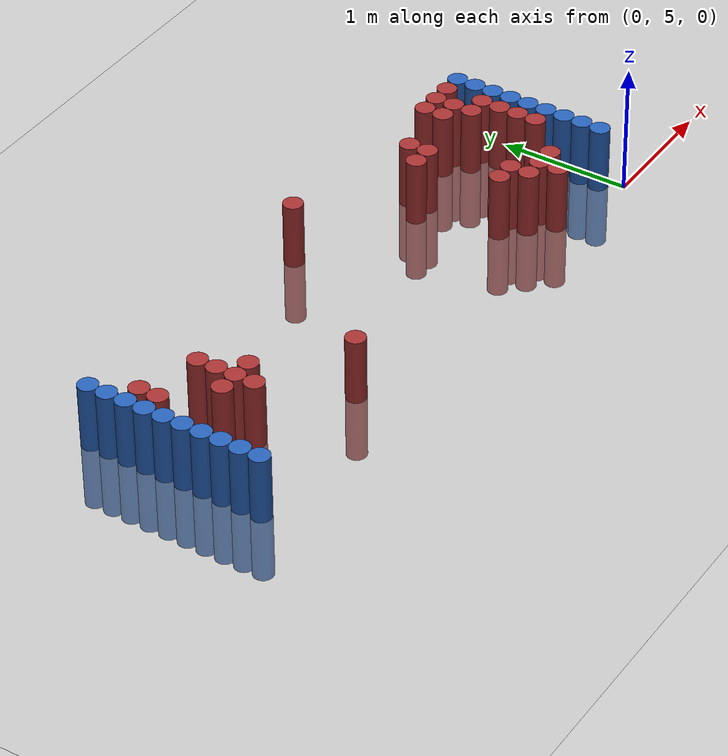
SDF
<sdf version="1.6">
 <world name="default">
  <model name="ground_plane">
   <static>1</static>
   <link name="link">
    <collision name="collision">
     <geometry><plane><normal>0 0 1</normal><size>100 100</size></plane></geometry>
     <surface><friction><ode><mu>100</mu><mu2>50</mu2></ode></friction></surface>
    </collision>
    <visual name="visual">
     <cast_shadows>0</cast_shadows>
     <geometry><plane><normal>0 0 1</normal><size>100 100</size></plane></geometry>
     <material>
      <script><uri>file://media/materials/scripts/gazebo.material</uri><name>Gazebo/Grey</name></script>
     </material>
    </visual>
   </link>
  </model>
  <model name="unit_cylinder_96">
   <static>1</static>
   <pose>-4.425000 5.175000 0.000000 0.000000 0.000000 0.000000</pose>
   <link name="link">
    <inertial>
     <mass>1</mass>
     <inertia><ixx>0.145833</ixx><ixy>0</ixy><ixz>0</ixz><iyy>0.145833</iyy><iyz>0</iyz><izz>0.125</izz></inertia>
    </inertial>
    <collision name="collision">
     <geometry><cylinder><radius>0.075000</radius><length>1</length></cylinder></geometry>
    </collision>
    <visual name="visual">
     <geometry><cylinder><radius>0.075000</radius><length>1</length></cylinder></geometry>
     <material>
      <ambient>0.152000 0.379000 0.720000 1</ambient>
      <diffuse>0.152000 0.379000 0.720000 1</diffuse>
     </material>
     <material>
      <script><name>Gazebo/Grey</name><uri>file://media/materials/scripts/gazebo.material</uri></script>
     </material>
    </visual>
   </link>
  </model>
  <model name="unit_cylinder_97">
   <static>1</static>
   <pose>-4.425000 5.325000 0.000000 0.000000 0.000000 0.000000</pose>
   <link name="link">
    <inertial>
     <mass>1</mass>
     <inertia><ixx>0.145833</ixx><ixy>0</ixy><ixz>0</ixz><iyy>0.145833</iyy><iyz>0</iyz><izz>0.125</izz></inertia>
    </inertial>
    <collision name="collision">
     <geometry><cylinder><radius>0.075000</radius><length>1</length></cylinder></geometry>
    </collision>
    <visual name="visual">
     <geometry><cylinder><radius>0.075000</radius><length>1</length></cylinder></geometry>
     <material>
      <ambient>0.152000 0.379000 0.720000 1</ambient>
      <diffuse>0.152000 0.379000 0.720000 1</diffuse>
     </material>
     <material>
      <script><name>Gazebo/Grey</name><uri>file://media/materials/scripts/gazebo.material</uri></script>
     </material>
    </visual>
   </link>
  </model>
  <model name="unit_cylinder_98">
   <static>1</static>
   <pose>-4.425000 5.475000 0.000000 0.000000 0.000000 0.000000</pose>
   <link name="link">
    <inertial>
     <mass>1</mass>
     <inertia><ixx>0.145833</ixx><ixy>0</ixy><ixz>0</ixz><iyy>0.145833</iyy><iyz>0</iyz><izz>0.125</izz></inertia>
    </inertial>
    <collision name="collision">
     <geometry><cylinder><radius>0.075000</radius><length>1</length></cylinder></geometry>
    </collision>
    <visual name="visual">
     <geometry><cylinder><radius>0.075000</radius><length>1</length></cylinder></geometry>
     <material>
      <ambient>0.152000 0.379000 0.720000 1</ambient>
      <diffuse>0.152000 0.379000 0.720000 1</diffuse>
     </material>
     <material>
      <script><name>Gazebo/Grey</name><uri>file://media/materials/scripts/gazebo.material</uri></script>
     </material>
    </visual>
   </link>
  </model>
  <model name="unit_cylinder_99">
   <static>1</static>
   <pose>-4.425000 5.625000 0.000000 0.000000 0.000000 0.000000</pose>
   <link name="link">
    <inertial>
     <mass>1</mass>
     <inertia><ixx>0.145833</ixx><ixy>0</ixy><ixz>0</ixz><iyy>0.145833</iyy><iyz>0</iyz><izz>0.125</izz></inertia>
    </inertial>
    <collision name="collision">
     <geometry><cylinder><radius>0.075000</radius><length>1</length></cylinder></geometry>
    </collision>
    <visual name="visual">
     <geometry><cylinder><radius>0.075000</radius><length>1</length></cylinder></geometry>
     <material>
      <ambient>0.152000 0.379000 0.720000 1</ambient>
      <diffuse>0.152000 0.379000 0.720000 1</diffuse>
     </material>
     <material>
      <script><name>Gazebo/Grey</name><uri>file://media/materials/scripts/gazebo.material</uri></script>
     </material>
    </visual>
   </link>
  </model>
  <model name="unit_cylinder_100">
   <static>1</static>
   <pose>-4.425000 5.775000 0.000000 0.000000 0.000000 0.000000</pose>
   <link name="link">
    <inertial>
     <mass>1</mass>
     <inertia><ixx>0.145833</ixx><ixy>0</ixy><ixz>0</ixz><iyy>0.145833</iyy><iyz>0</iyz><izz>0.125</izz></inertia>
    </inertial>
    <collision name="collision">
     <geometry><cylinder><radius>0.075000</radius><length>1</length></cylinder></geometry>
    </collision>
    <visual name="visual">
     <geometry><cylinder><radius>0.075000</radius><length>1</length></cylinder></geometry>
     <material>
      <ambient>0.152000 0.379000 0.720000 1</ambient>
      <diffuse>0.152000 0.379000 0.720000 1</diffuse>
     </material>
     <material>
      <script><name>Gazebo/Grey</name><uri>file://media/materials/scripts/gazebo.material</uri></script>
     </material>
    </visual>
   </link>
  </model>
  <model name="unit_cylinder_101">
   <static>1</static>
   <pose>-4.425000 5.925000 0.000000 0.000000 0.000000 0.000000</pose>
   <link name="link">
    <inertial>
     <mass>1</mass>
     <inertia><ixx>0.145833</ixx><ixy>0</ixy><ixz>0</ixz><iyy>0.145833</iyy><iyz>0</iyz><izz>0.125</izz></inertia>
    </inertial>
    <collision name="collision">
     <geometry><cylinder><radius>0.075000</radius><length>1</length></cylinder></geometry>
    </collision>
    <visual name="visual">
     <geometry><cylinder><radius>0.075000</radius><length>1</length></cylinder></geometry>
     <material>
      <ambient>0.152000 0.379000 0.720000 1</ambient>
      <diffuse>0.152000 0.379000 0.720000 1</diffuse>
     </material>
     <material>
      <script><name>Gazebo/Grey</name><uri>file://media/materials/scripts/gazebo.material</uri></script>
     </material>
    </visual>
   </link>
  </model>
  <model name="unit_cylinder_102">
   <static>1</static>
   <pose>-4.425000 6.075000 0.000000 0.000000 0.000000 0.000000</pose>
   <link name="link">
    <inertial>
     <mass>1</mass>
     <inertia><ixx>0.145833</ixx><ixy>0</ixy><ixz>0</ixz><iyy>0.145833</iyy><iyz>0</iyz><izz>0.125</izz></inertia>
    </inertial>
    <collision name="collision">
     <geometry><cylinder><radius>0.075000</radius><length>1</length></cylinder></geometry>
    </collision>
    <visual name="visual">
     <geometry><cylinder><radius>0.075000</radius><length>1</length></cylinder></geometry>
     <material>
      <ambient>0.152000 0.379000 0.720000 1</ambient>
      <diffuse>0.152000 0.379000 0.720000 1</diffuse>
     </material>
     <material>
      <script><name>Gazebo/Grey</name><uri>file://media/materials/scripts/gazebo.material</uri></script>
     </material>
    </visual>
   </link>
  </model>
  <model name="unit_cylinder_103">
   <static>1</static>
   <pose>-4.425000 6.225000 0.000000 0.000000 0.000000 0.000000</pose>
   <link name="link">
    <inertial>
     <mass>1</mass>
     <inertia><ixx>0.145833</ixx><ixy>0</ixy><ixz>0</ixz><iyy>0.145833</iyy><iyz>0</iyz><izz>0.125</izz></inertia>
    </inertial>
    <collision name="collision">
     <geometry><cylinder><radius>0.075000</radius><length>1</length></cylinder></geometry>
    </collision>
    <visual name="visual">
     <geometry><cylinder><radius>0.075000</radius><length>1</length></cylinder></geometry>
     <material>
      <ambient>0.152000 0.379000 0.720000 1</ambient>
      <diffuse>0.152000 0.379000 0.720000 1</diffuse>
     </material>
     <material>
      <script><name>Gazebo/Grey</name><uri>file://media/materials/scripts/gazebo.material</uri></script>
     </material>
    </visual>
   </link>
  </model>
  <model name="unit_cylinder_104">
   <static>1</static>
   <pose>-4.425000 6.375000 0.000000 0.000000 0.000000 0.000000</pose>
   <link name="link">
    <inertial>
     <mass>1</mass>
     <inertia><ixx>0.145833</ixx><ixy>0</ixy><ixz>0</ixz><iyy>0.145833</iyy><iyz>0</iyz><izz>0.125</izz></inertia>
    </inertial>
    <collision name="collision">
     <geometry><cylinder><radius>0.075000</radius><length>1</length></cylinder></geometry>
    </collision>
    <visual name="visual">
     <geometry><cylinder><radius>0.075000</radius><length>1</length></cylinder></geometry>
     <material>
      <ambient>0.152000 0.379000 0.720000 1</ambient>
      <diffuse>0.152000 0.379000 0.720000 1</diffuse>
     </material>
     <material>
      <script><name>Gazebo/Grey</name><uri>file://media/materials/scripts/gazebo.material</uri></script>
     </material>
    </visual>
   </link>
  </model>
  <model name="unit_cylinder_105">
   <static>1</static>
   <pose>-4.425000 6.525000 0.000000 0.000000 0.000000 0.000000</pose>
   <link name="link">
    <inertial>
     <mass>1</mass>
     <inertia><ixx>0.145833</ixx><ixy>0</ixy><ixz>0</ixz><iyy>0.145833</iyy><iyz>0</iyz><izz>0.125</izz></inertia>
    </inertial>
    <collision name="collision">
     <geometry><cylinder><radius>0.075000</radius><length>1</length></cylinder></geometry>
    </collision>
    <visual name="visual">
     <geometry><cylinder><radius>0.075000</radius><length>1</length></cylinder></geometry>
     <material>
      <ambient>0.152000 0.379000 0.720000 1</ambient>
      <diffuse>0.152000 0.379000 0.720000 1</diffuse>
     </material>
     <material>
      <script><name>Gazebo/Grey</name><uri>file://media/materials/scripts/gazebo.material</uri></script>
     </material>
    </visual>
   </link>
  </model>
  <model name="unit_cylinder_126">
   <static>1</static>
   <pose>-4.275000 6.075000 0.000000 0.000000 0.000000 0.000000</pose>
   <link name="link">
    <inertial>
     <mass>1</mass>
     <inertia><ixx>0.145833</ixx><ixy>0</ixy><ixz>0</ixz><iyy>0.145833</iyy><iyz>0</iyz><izz>0.125</izz></inertia>
    </inertial>
    <collision name="collision">
     <geometry><cylinder><radius>0.075000</radius><length>1</length></cylinder></geometry>
    </collision>
    <visual name="visual">
     <geometry><cylinder><radius>0.075000</radius><length>1</length></cylinder></geometry>
     <material>
      <ambient>0.648000 0.192000 0.192000 1</ambient>
      <diffuse>0.648000 0.192000 0.192000 1</diffuse>
     </material>
     <material>
      <script><name>Gazebo/Grey</name><uri>file://media/materials/scripts/gazebo.material</uri></script>
     </material>
    </visual>
   </link>
  </model>
  <model name="unit_cylinder_127">
   <static>1</static>
   <pose>-4.275000 6.225000 0.000000 0.000000 0.000000 0.000000</pose>
   <link name="link">
    <inertial>
     <mass>1</mass>
     <inertia><ixx>0.145833</ixx><ixy>0</ixy><ixz>0</ixz><iyy>0.145833</iyy><iyz>0</iyz><izz>0.125</izz></inertia>
    </inertial>
    <collision name="collision">
     <geometry><cylinder><radius>0.075000</radius><length>1</length></cylinder></geometry>
    </collision>
    <visual name="visual">
     <geometry><cylinder><radius>0.075000</radius><length>1</length></cylinder></geometry>
     <material>
      <ambient>0.648000 0.192000 0.192000 1</ambient>
      <diffuse>0.648000 0.192000 0.192000 1</diffuse>
     </material>
     <material>
      <script><name>Gazebo/Grey</name><uri>file://media/materials/scripts/gazebo.material</uri></script>
     </material>
    </visual>
   </link>
  </model>
  <model name="unit_cylinder_135">
   <static>1</static>
   <pose>-3.975000 5.775000 0.000000 0.000000 0.000000 0.000000</pose>
   <link name="link">
    <inertial>
     <mass>1</mass>
     <inertia><ixx>0.145833</ixx><ixy>0</ixy><ixz>0</ixz><iyy>0.145833</iyy><iyz>0</iyz><izz>0.125</izz></inertia>
    </inertial>
    <collision name="collision">
     <geometry><cylinder><radius>0.075000</radius><length>1</length></cylinder></geometry>
    </collision>
    <visual name="visual">
     <geometry><cylinder><radius>0.075000</radius><length>1</length></cylinder></geometry>
     <material>
      <ambient>0.648000 0.192000 0.192000 1</ambient>
      <diffuse>0.648000 0.192000 0.192000 1</diffuse>
     </material>
     <material>
      <script><name>Gazebo/Grey</name><uri>file://media/materials/scripts/gazebo.material</uri></script>
     </material>
    </visual>
   </link>
  </model>
  <model name="unit_cylinder_136">
   <static>1</static>
   <pose>-3.825000 5.625000 0.000000 0.000000 0.000000 0.000000</pose>
   <link name="link">
    <inertial>
     <mass>1</mass>
     <inertia><ixx>0.145833</ixx><ixy>0</ixy><ixz>0</ixz><iyy>0.145833</iyy><iyz>0</iyz><izz>0.125</izz></inertia>
    </inertial>
    <collision name="collision">
     <geometry><cylinder><radius>0.075000</radius><length>1</length></cylinder></geometry>
    </collision>
    <visual name="visual">
     <geometry><cylinder><radius>0.075000</radius><length>1</length></cylinder></geometry>
     <material>
      <ambient>0.648000 0.192000 0.192000 1</ambient>
      <diffuse>0.648000 0.192000 0.192000 1</diffuse>
     </material>
     <material>
      <script><name>Gazebo/Grey</name><uri>file://media/materials/scripts/gazebo.material</uri></script>
     </material>
    </visual>
   </link>
  </model>
  <model name="unit_cylinder_137">
   <static>1</static>
   <pose>-3.825000 5.775000 0.000000 0.000000 0.000000 0.000000</pose>
   <link name="link">
    <inertial>
     <mass>1</mass>
     <inertia><ixx>0.145833</ixx><ixy>0</ixy><ixz>0</ixz><iyy>0.145833</iyy><iyz>0</iyz><izz>0.125</izz></inertia>
    </inertial>
    <collision name="collision">
     <geometry><cylinder><radius>0.075000</radius><length>1</length></cylinder></geometry>
    </collision>
    <visual name="visual">
     <geometry><cylinder><radius>0.075000</radius><length>1</length></cylinder></geometry>
     <material>
      <ambient>0.648000 0.192000 0.192000 1</ambient>
      <diffuse>0.648000 0.192000 0.192000 1</diffuse>
     </material>
     <material>
      <script><name>Gazebo/Grey</name><uri>file://media/materials/scripts/gazebo.material</uri></script>
     </material>
    </visual>
   </link>
  </model>
  <model name="unit_cylinder_138">
   <static>1</static>
   <pose>-3.825000 5.925000 0.000000 0.000000 0.000000 0.000000</pose>
   <link name="link">
    <inertial>
     <mass>1</mass>
     <inertia><ixx>0.145833</ixx><ixy>0</ixy><ixz>0</ixz><iyy>0.145833</iyy><iyz>0</iyz><izz>0.125</izz></inertia>
    </inertial>
    <collision name="collision">
     <geometry><cylinder><radius>0.075000</radius><length>1</length></cylinder></geometry>
    </collision>
    <visual name="visual">
     <geometry><cylinder><radius>0.075000</radius><length>1</length></cylinder></geometry>
     <material>
      <ambient>0.648000 0.192000 0.192000 1</ambient>
      <diffuse>0.648000 0.192000 0.192000 1</diffuse>
     </material>
     <material>
      <script><name>Gazebo/Grey</name><uri>file://media/materials/scripts/gazebo.material</uri></script>
     </material>
    </visual>
   </link>
  </model>
  <model name="unit_cylinder_139">
   <static>1</static>
   <pose>-3.825000 6.075000 0.000000 0.000000 0.000000 0.000000</pose>
   <link name="link">
    <inertial>
     <mass>1</mass>
     <inertia><ixx>0.145833</ixx><ixy>0</ixy><ixz>0</ixz><iyy>0.145833</iyy><iyz>0</iyz><izz>0.125</izz></inertia>
    </inertial>
    <collision name="collision">
     <geometry><cylinder><radius>0.075000</radius><length>1</length></cylinder></geometry>
    </collision>
    <visual name="visual">
     <geometry><cylinder><radius>0.075000</radius><length>1</length></cylinder></geometry>
     <material>
      <ambient>0.648000 0.192000 0.192000 1</ambient>
      <diffuse>0.648000 0.192000 0.192000 1</diffuse>
     </material>
     <material>
      <script><name>Gazebo/Grey</name><uri>file://media/materials/scripts/gazebo.material</uri></script>
     </material>
    </visual>
   </link>
  </model>
  <model name="unit_cylinder_142">
   <static>1</static>
   <pose>-3.675000 5.775000 0.000000 0.000000 0.000000 0.000000</pose>
   <link name="link">
    <inertial>
     <mass>1</mass>
     <inertia><ixx>0.145833</ixx><ixy>0</ixy><ixz>0</ixz><iyy>0.145833</iyy><iyz>0</iyz><izz>0.125</izz></inertia>
    </inertial>
    <collision name="collision">
     <geometry><cylinder><radius>0.075000</radius><length>1</length></cylinder></geometry>
    </collision>
    <visual name="visual">
     <geometry><cylinder><radius>0.075000</radius><length>1</length></cylinder></geometry>
     <material>
      <ambient>0.648000 0.192000 0.192000 1</ambient>
      <diffuse>0.648000 0.192000 0.192000 1</diffuse>
     </material>
     <material>
      <script><name>Gazebo/Grey</name><uri>file://media/materials/scripts/gazebo.material</uri></script>
     </material>
    </visual>
   </link>
  </model>
  <model name="unit_cylinder_144">
   <static>1</static>
   <pose>-3.075000 5.325000 0.000000 0.000000 0.000000 0.000000</pose>
   <link name="link">
    <inertial>
     <mass>1</mass>
     <inertia><ixx>0.145833</ixx><ixy>0</ixy><ixz>0</ixz><iyy>0.145833</iyy><iyz>0</iyz><izz>0.125</izz></inertia>
    </inertial>
    <collision name="collision">
     <geometry><cylinder><radius>0.075000</radius><length>1</length></cylinder></geometry>
    </collision>
    <visual name="visual">
     <geometry><cylinder><radius>0.075000</radius><length>1</length></cylinder></geometry>
     <material>
      <ambient>0.648000 0.192000 0.192000 1</ambient>
      <diffuse>0.648000 0.192000 0.192000 1</diffuse>
     </material>
     <material>
      <script><name>Gazebo/Grey</name><uri>file://media/materials/scripts/gazebo.material</uri></script>
     </material>
    </visual>
   </link>
  </model>
  <model name="unit_cylinder_154">
   <static>1</static>
   <pose>-2.025000 6.525000 0.000000 0.000000 0.000000 0.000000</pose>
   <link name="link">
    <inertial>
     <mass>1</mass>
     <inertia><ixx>0.145833</ixx><ixy>0</ixy><ixz>0</ixz><iyy>0.145833</iyy><iyz>0</iyz><izz>0.125</izz></inertia>
    </inertial>
    <collision name="collision">
     <geometry><cylinder><radius>0.075000</radius><length>1</length></cylinder></geometry>
    </collision>
    <visual name="visual">
     <geometry><cylinder><radius>0.075000</radius><length>1</length></cylinder></geometry>
     <material>
      <ambient>0.648000 0.192000 0.192000 1</ambient>
      <diffuse>0.648000 0.192000 0.192000 1</diffuse>
     </material>
     <material>
      <script><name>Gazebo/Grey</name><uri>file://media/materials/scripts/gazebo.material</uri></script>
     </material>
    </visual>
   </link>
  </model>
  <model name="unit_cylinder_170">
   <static>1</static>
   <pose>-1.125000 6.075000 0.000000 0.000000 0.000000 0.000000</pose>
   <link name="link">
    <inertial>
     <mass>1</mass>
     <inertia><ixx>0.145833</ixx><ixy>0</ixy><ixz>0</ixz><iyy>0.145833</iyy><iyz>0</iyz><izz>0.125</izz></inertia>
    </inertial>
    <collision name="collision">
     <geometry><cylinder><radius>0.075000</radius><length>1</length></cylinder></geometry>
    </collision>
    <visual name="visual">
     <geometry><cylinder><radius>0.075000</radius><length>1</length></cylinder></geometry>
     <material>
      <ambient>0.648000 0.192000 0.192000 1</ambient>
      <diffuse>0.648000 0.192000 0.192000 1</diffuse>
     </material>
     <material>
      <script><name>Gazebo/Grey</name><uri>file://media/materials/scripts/gazebo.material</uri></script>
     </material>
    </visual>
   </link>
  </model>
  <model name="unit_cylinder_171">
   <static>1</static>
   <pose>-0.975000 5.475000 0.000000 0.000000 0.000000 0.000000</pose>
   <link name="link">
    <inertial>
     <mass>1</mass>
     <inertia><ixx>0.145833</ixx><ixy>0</ixy><ixz>0</ixz><iyy>0.145833</iyy><iyz>0</iyz><izz>0.125</izz></inertia>
    </inertial>
    <collision name="collision">
     <geometry><cylinder><radius>0.075000</radius><length>1</length></cylinder></geometry>
    </collision>
    <visual name="visual">
     <geometry><cylinder><radius>0.075000</radius><length>1</length></cylinder></geometry>
     <material>
      <ambient>0.648000 0.192000 0.192000 1</ambient>
      <diffuse>0.648000 0.192000 0.192000 1</diffuse>
     </material>
     <material>
      <script><name>Gazebo/Grey</name><uri>file://media/materials/scripts/gazebo.material</uri></script>
     </material>
    </visual>
   </link>
  </model>
  <model name="unit_cylinder_172">
   <static>1</static>
   <pose>-0.975000 6.075000 0.000000 0.000000 0.000000 0.000000</pose>
   <link name="link">
    <inertial>
     <mass>1</mass>
     <inertia><ixx>0.145833</ixx><ixy>0</ixy><ixz>0</ixz><iyy>0.145833</iyy><iyz>0</iyz><izz>0.125</izz></inertia>
    </inertial>
    <collision name="collision">
     <geometry><cylinder><radius>0.075000</radius><length>1</length></cylinder></geometry>
    </collision>
    <visual name="visual">
     <geometry><cylinder><radius>0.075000</radius><length>1</length></cylinder></geometry>
     <material>
      <ambient>0.648000 0.192000 0.192000 1</ambient>
      <diffuse>0.648000 0.192000 0.192000 1</diffuse>
     </material>
     <material>
      <script><name>Gazebo/Grey</name><uri>file://media/materials/scripts/gazebo.material</uri></script>
     </material>
    </visual>
   </link>
  </model>
  <model name="unit_cylinder_173">
   <static>1</static>
   <pose>-0.975000 6.225000 0.000000 0.000000 0.000000 0.000000</pose>
   <link name="link">
    <inertial>
     <mass>1</mass>
     <inertia><ixx>0.145833</ixx><ixy>0</ixy><ixz>0</ixz><iyy>0.145833</iyy><iyz>0</iyz><izz>0.125</izz></inertia>
    </inertial>
    <collision name="collision">
     <geometry><cylinder><radius>0.075000</radius><length>1</length></cylinder></geometry>
    </collision>
    <visual name="visual">
     <geometry><cylinder><radius>0.075000</radius><length>1</length></cylinder></geometry>
     <material>
      <ambient>0.648000 0.192000 0.192000 1</ambient>
      <diffuse>0.648000 0.192000 0.192000 1</diffuse>
     </material>
     <material>
      <script><name>Gazebo/Grey</name><uri>file://media/materials/scripts/gazebo.material</uri></script>
     </material>
    </visual>
   </link>
  </model>
  <model name="unit_cylinder_174">
   <static>1</static>
   <pose>-0.825000 5.325000 0.000000 0.000000 0.000000 0.000000</pose>
   <link name="link">
    <inertial>
     <mass>1</mass>
     <inertia><ixx>0.145833</ixx><ixy>0</ixy><ixz>0</ixz><iyy>0.145833</iyy><iyz>0</iyz><izz>0.125</izz></inertia>
    </inertial>
    <collision name="collision">
     <geometry><cylinder><radius>0.075000</radius><length>1</length></cylinder></geometry>
    </collision>
    <visual name="visual">
     <geometry><cylinder><radius>0.075000</radius><length>1</length></cylinder></geometry>
     <material>
      <ambient>0.648000 0.192000 0.192000 1</ambient>
      <diffuse>0.648000 0.192000 0.192000 1</diffuse>
     </material>
     <material>
      <script><name>Gazebo/Grey</name><uri>file://media/materials/scripts/gazebo.material</uri></script>
     </material>
    </visual>
   </link>
  </model>
  <model name="unit_cylinder_175">
   <static>1</static>
   <pose>-0.825000 5.475000 0.000000 0.000000 0.000000 0.000000</pose>
   <link name="link">
    <inertial>
     <mass>1</mass>
     <inertia><ixx>0.145833</ixx><ixy>0</ixy><ixz>0</ixz><iyy>0.145833</iyy><iyz>0</iyz><izz>0.125</izz></inertia>
    </inertial>
    <collision name="collision">
     <geometry><cylinder><radius>0.075000</radius><length>1</length></cylinder></geometry>
    </collision>
    <visual name="visual">
     <geometry><cylinder><radius>0.075000</radius><length>1</length></cylinder></geometry>
     <material>
      <ambient>0.648000 0.192000 0.192000 1</ambient>
      <diffuse>0.648000 0.192000 0.192000 1</diffuse>
     </material>
     <material>
      <script><name>Gazebo/Grey</name><uri>file://media/materials/scripts/gazebo.material</uri></script>
     </material>
    </visual>
   </link>
  </model>
  <model name="unit_cylinder_177">
   <static>1</static>
   <pose>-0.675000 5.175000 0.000000 0.000000 0.000000 0.000000</pose>
   <link name="link">
    <inertial>
     <mass>1</mass>
     <inertia><ixx>0.145833</ixx><ixy>0</ixy><ixz>0</ixz><iyy>0.145833</iyy><iyz>0</iyz><izz>0.125</izz></inertia>
    </inertial>
    <collision name="collision">
     <geometry><cylinder><radius>0.075000</radius><length>1</length></cylinder></geometry>
    </collision>
    <visual name="visual">
     <geometry><cylinder><radius>0.075000</radius><length>1</length></cylinder></geometry>
     <material>
      <ambient>0.648000 0.192000 0.192000 1</ambient>
      <diffuse>0.648000 0.192000 0.192000 1</diffuse>
     </material>
     <material>
      <script><name>Gazebo/Grey</name><uri>file://media/materials/scripts/gazebo.material</uri></script>
     </material>
    </visual>
   </link>
  </model>
  <model name="unit_cylinder_178">
   <static>1</static>
   <pose>-0.675000 5.325000 0.000000 0.000000 0.000000 0.000000</pose>
   <link name="link">
    <inertial>
     <mass>1</mass>
     <inertia><ixx>0.145833</ixx><ixy>0</ixy><ixz>0</ixz><iyy>0.145833</iyy><iyz>0</iyz><izz>0.125</izz></inertia>
    </inertial>
    <collision name="collision">
     <geometry><cylinder><radius>0.075000</radius><length>1</length></cylinder></geometry>
    </collision>
    <visual name="visual">
     <geometry><cylinder><radius>0.075000</radius><length>1</length></cylinder></geometry>
     <material>
      <ambient>0.648000 0.192000 0.192000 1</ambient>
      <diffuse>0.648000 0.192000 0.192000 1</diffuse>
     </material>
     <material>
      <script><name>Gazebo/Grey</name><uri>file://media/materials/scripts/gazebo.material</uri></script>
     </material>
    </visual>
   </link>
  </model>
  <model name="unit_cylinder_181">
   <static>1</static>
   <pose>-0.525000 5.325000 0.000000 0.000000 0.000000 0.000000</pose>
   <link name="link">
    <inertial>
     <mass>1</mass>
     <inertia><ixx>0.145833</ixx><ixy>0</ixy><ixz>0</ixz><iyy>0.145833</iyy><iyz>0</iyz><izz>0.125</izz></inertia>
    </inertial>
    <collision name="collision">
     <geometry><cylinder><radius>0.075000</radius><length>1</length></cylinder></geometry>
    </collision>
    <visual name="visual">
     <geometry><cylinder><radius>0.075000</radius><length>1</length></cylinder></geometry>
     <material>
      <ambient>0.648000 0.192000 0.192000 1</ambient>
      <diffuse>0.648000 0.192000 0.192000 1</diffuse>
     </material>
     <material>
      <script><name>Gazebo/Grey</name><uri>file://media/materials/scripts/gazebo.material</uri></script>
     </material>
    </visual>
   </link>
  </model>
  <model name="unit_cylinder_182">
   <static>1</static>
   <pose>-0.525000 6.225000 0.000000 0.000000 0.000000 0.000000</pose>
   <link name="link">
    <inertial>
     <mass>1</mass>
     <inertia><ixx>0.145833</ixx><ixy>0</ixy><ixz>0</ixz><iyy>0.145833</iyy><iyz>0</iyz><izz>0.125</izz></inertia>
    </inertial>
    <collision name="collision">
     <geometry><cylinder><radius>0.075000</radius><length>1</length></cylinder></geometry>
    </collision>
    <visual name="visual">
     <geometry><cylinder><radius>0.075000</radius><length>1</length></cylinder></geometry>
     <material>
      <ambient>0.648000 0.192000 0.192000 1</ambient>
      <diffuse>0.648000 0.192000 0.192000 1</diffuse>
     </material>
     <material>
      <script><name>Gazebo/Grey</name><uri>file://media/materials/scripts/gazebo.material</uri></script>
     </material>
    </visual>
   </link>
  </model>
  <model name="unit_cylinder_183">
   <static>1</static>
   <pose>-0.525000 6.375000 0.000000 0.000000 0.000000 0.000000</pose>
   <link name="link">
    <inertial>
     <mass>1</mass>
     <inertia><ixx>0.145833</ixx><ixy>0</ixy><ixz>0</ixz><iyy>0.145833</iyy><iyz>0</iyz><izz>0.125</izz></inertia>
    </inertial>
    <collision name="collision">
     <geometry><cylinder><radius>0.075000</radius><length>1</length></cylinder></geometry>
    </collision>
    <visual name="visual">
     <geometry><cylinder><radius>0.075000</radius><length>1</length></cylinder></geometry>
     <material>
      <ambient>0.648000 0.192000 0.192000 1</ambient>
      <diffuse>0.648000 0.192000 0.192000 1</diffuse>
     </material>
     <material>
      <script><name>Gazebo/Grey</name><uri>file://media/materials/scripts/gazebo.material</uri></script>
     </material>
    </visual>
   </link>
  </model>
  <model name="unit_cylinder_187">
   <static>1</static>
   <pose>-0.375000 6.075000 0.000000 0.000000 0.000000 0.000000</pose>
   <link name="link">
    <inertial>
     <mass>1</mass>
     <inertia><ixx>0.145833</ixx><ixy>0</ixy><ixz>0</ixz><iyy>0.145833</iyy><iyz>0</iyz><izz>0.125</izz></inertia>
    </inertial>
    <collision name="collision">
     <geometry><cylinder><radius>0.075000</radius><length>1</length></cylinder></geometry>
    </collision>
    <visual name="visual">
     <geometry><cylinder><radius>0.075000</radius><length>1</length></cylinder></geometry>
     <material>
      <ambient>0.648000 0.192000 0.192000 1</ambient>
      <diffuse>0.648000 0.192000 0.192000 1</diffuse>
     </material>
     <material>
      <script><name>Gazebo/Grey</name><uri>file://media/materials/scripts/gazebo.material</uri></script>
     </material>
    </visual>
   </link>
  </model>
  <model name="unit_cylinder_188">
   <static>1</static>
   <pose>-0.375000 6.225000 0.000000 0.000000 0.000000 0.000000</pose>
   <link name="link">
    <inertial>
     <mass>1</mass>
     <inertia><ixx>0.145833</ixx><ixy>0</ixy><ixz>0</ixz><iyy>0.145833</iyy><iyz>0</iyz><izz>0.125</izz></inertia>
    </inertial>
    <collision name="collision">
     <geometry><cylinder><radius>0.075000</radius><length>1</length></cylinder></geometry>
    </collision>
    <visual name="visual">
     <geometry><cylinder><radius>0.075000</radius><length>1</length></cylinder></geometry>
     <material>
      <ambient>0.648000 0.192000 0.192000 1</ambient>
      <diffuse>0.648000 0.192000 0.192000 1</diffuse>
     </material>
     <material>
      <script><name>Gazebo/Grey</name><uri>file://media/materials/scripts/gazebo.material</uri></script>
     </material>
    </visual>
   </link>
  </model>
  <model name="unit_cylinder_189">
   <static>1</static>
   <pose>-0.375000 6.375000 0.000000 0.000000 0.000000 0.000000</pose>
   <link name="link">
    <inertial>
     <mass>1</mass>
     <inertia><ixx>0.145833</ixx><ixy>0</ixy><ixz>0</ixz><iyy>0.145833</iyy><iyz>0</iyz><izz>0.125</izz></inertia>
    </inertial>
    <collision name="collision">
     <geometry><cylinder><radius>0.075000</radius><length>1</length></cylinder></geometry>
    </collision>
    <visual name="visual">
     <geometry><cylinder><radius>0.075000</radius><length>1</length></cylinder></geometry>
     <material>
      <ambient>0.648000 0.192000 0.192000 1</ambient>
      <diffuse>0.648000 0.192000 0.192000 1</diffuse>
     </material>
     <material>
      <script><name>Gazebo/Grey</name><uri>file://media/materials/scripts/gazebo.material</uri></script>
     </material>
    </visual>
   </link>
  </model>
  <model name="unit_cylinder_194">
   <static>1</static>
   <pose>-0.225000 5.625000 0.000000 0.000000 0.000000 0.000000</pose>
   <link name="link">
    <inertial>
     <mass>1</mass>
     <inertia><ixx>0.145833</ixx><ixy>0</ixy><ixz>0</ixz><iyy>0.145833</iyy><iyz>0</iyz><izz>0.125</izz></inertia>
    </inertial>
    <collision name="collision">
     <geometry><cylinder><radius>0.075000</radius><length>1</length></cylinder></geometry>
    </collision>
    <visual name="visual">
     <geometry><cylinder><radius>0.075000</radius><length>1</length></cylinder></geometry>
     <material>
      <ambient>0.648000 0.192000 0.192000 1</ambient>
      <diffuse>0.648000 0.192000 0.192000 1</diffuse>
     </material>
     <material>
      <script><name>Gazebo/Grey</name><uri>file://media/materials/scripts/gazebo.material</uri></script>
     </material>
    </visual>
   </link>
  </model>
  <model name="unit_cylinder_195">
   <static>1</static>
   <pose>-0.225000 5.775000 0.000000 0.000000 0.000000 0.000000</pose>
   <link name="link">
    <inertial>
     <mass>1</mass>
     <inertia><ixx>0.145833</ixx><ixy>0</ixy><ixz>0</ixz><iyy>0.145833</iyy><iyz>0</iyz><izz>0.125</izz></inertia>
    </inertial>
    <collision name="collision">
     <geometry><cylinder><radius>0.075000</radius><length>1</length></cylinder></geometry>
    </collision>
    <visual name="visual">
     <geometry><cylinder><radius>0.075000</radius><length>1</length></cylinder></geometry>
     <material>
      <ambient>0.648000 0.192000 0.192000 1</ambient>
      <diffuse>0.648000 0.192000 0.192000 1</diffuse>
     </material>
     <material>
      <script><name>Gazebo/Grey</name><uri>file://media/materials/scripts/gazebo.material</uri></script>
     </material>
    </visual>
   </link>
  </model>
  <model name="unit_cylinder_196">
   <static>1</static>
   <pose>-0.225000 5.925000 0.000000 0.000000 0.000000 0.000000</pose>
   <link name="link">
    <inertial>
     <mass>1</mass>
     <inertia><ixx>0.145833</ixx><ixy>0</ixy><ixz>0</ixz><iyy>0.145833</iyy><iyz>0</iyz><izz>0.125</izz></inertia>
    </inertial>
    <collision name="collision">
     <geometry><cylinder><radius>0.075000</radius><length>1</length></cylinder></geometry>
    </collision>
    <visual name="visual">
     <geometry><cylinder><radius>0.075000</radius><length>1</length></cylinder></geometry>
     <material>
      <ambient>0.648000 0.192000 0.192000 1</ambient>
      <diffuse>0.648000 0.192000 0.192000 1</diffuse>
     </material>
     <material>
      <script><name>Gazebo/Grey</name><uri>file://media/materials/scripts/gazebo.material</uri></script>
     </material>
    </visual>
   </link>
  </model>
  <model name="unit_cylinder_197">
   <static>1</static>
   <pose>-0.225000 6.075000 0.000000 0.000000 0.000000 0.000000</pose>
   <link name="link">
    <inertial>
     <mass>1</mass>
     <inertia><ixx>0.145833</ixx><ixy>0</ixy><ixz>0</ixz><iyy>0.145833</iyy><iyz>0</iyz><izz>0.125</izz></inertia>
    </inertial>
    <collision name="collision">
     <geometry><cylinder><radius>0.075000</radius><length>1</length></cylinder></geometry>
    </collision>
    <visual name="visual">
     <geometry><cylinder><radius>0.075000</radius><length>1</length></cylinder></geometry>
     <material>
      <ambient>0.648000 0.192000 0.192000 1</ambient>
      <diffuse>0.648000 0.192000 0.192000 1</diffuse>
     </material>
     <material>
      <script><name>Gazebo/Grey</name><uri>file://media/materials/scripts/gazebo.material</uri></script>
     </material>
    </visual>
   </link>
  </model>
  <model name="unit_cylinder_198">
   <static>1</static>
   <pose>-0.225000 6.375000 0.000000 0.000000 0.000000 0.000000</pose>
   <link name="link">
    <inertial>
     <mass>1</mass>
     <inertia><ixx>0.145833</ixx><ixy>0</ixy><ixz>0</ixz><iyy>0.145833</iyy><iyz>0</iyz><izz>0.125</izz></inertia>
    </inertial>
    <collision name="collision">
     <geometry><cylinder><radius>0.075000</radius><length>1</length></cylinder></geometry>
    </collision>
    <visual name="visual">
     <geometry><cylinder><radius>0.075000</radius><length>1</length></cylinder></geometry>
     <material>
      <ambient>0.648000 0.192000 0.192000 1</ambient>
      <diffuse>0.648000 0.192000 0.192000 1</diffuse>
     </material>
     <material>
      <script><name>Gazebo/Grey</name><uri>file://media/materials/scripts/gazebo.material</uri></script>
     </material>
    </visual>
   </link>
  </model>
  <model name="unit_cylinder_210">
   <static>1</static>
   <pose>-0.075000 5.175000 0.000000 0.000000 0.000000 0.000000</pose>
   <link name="link">
    <inertial>
     <mass>1</mass>
     <inertia><ixx>0.145833</ixx><ixy>0</ixy><ixz>0</ixz><iyy>0.145833</iyy><iyz>0</iyz><izz>0.125</izz></inertia>
    </inertial>
    <collision name="collision">
     <geometry><cylinder><radius>0.075000</radius><length>1</length></cylinder></geometry>
    </collision>
    <visual name="visual">
     <geometry><cylinder><radius>0.075000</radius><length>1</length></cylinder></geometry>
     <material>
      <ambient>0.152000 0.379000 0.720000 1</ambient>
      <diffuse>0.152000 0.379000 0.720000 1</diffuse>
     </material>
     <material>
      <script><name>Gazebo/Grey</name><uri>file://media/materials/scripts/gazebo.material</uri></script>
     </material>
    </visual>
   </link>
  </model>
  <model name="unit_cylinder_211">
   <static>1</static>
   <pose>-0.075000 5.325000 0.000000 0.000000 0.000000 0.000000</pose>
   <link name="link">
    <inertial>
     <mass>1</mass>
     <inertia><ixx>0.145833</ixx><ixy>0</ixy><ixz>0</ixz><iyy>0.145833</iyy><iyz>0</iyz><izz>0.125</izz></inertia>
    </inertial>
    <collision name="collision">
     <geometry><cylinder><radius>0.075000</radius><length>1</length></cylinder></geometry>
    </collision>
    <visual name="visual">
     <geometry><cylinder><radius>0.075000</radius><length>1</length></cylinder></geometry>
     <material>
      <ambient>0.152000 0.379000 0.720000 1</ambient>
      <diffuse>0.152000 0.379000 0.720000 1</diffuse>
     </material>
     <material>
      <script><name>Gazebo/Grey</name><uri>file://media/materials/scripts/gazebo.material</uri></script>
     </material>
    </visual>
   </link>
  </model>
  <model name="unit_cylinder_212">
   <static>1</static>
   <pose>-0.075000 5.475000 0.000000 0.000000 0.000000 0.000000</pose>
   <link name="link">
    <inertial>
     <mass>1</mass>
     <inertia><ixx>0.145833</ixx><ixy>0</ixy><ixz>0</ixz><iyy>0.145833</iyy><iyz>0</iyz><izz>0.125</izz></inertia>
    </inertial>
    <collision name="collision">
     <geometry><cylinder><radius>0.075000</radius><length>1</length></cylinder></geometry>
    </collision>
    <visual name="visual">
     <geometry><cylinder><radius>0.075000</radius><length>1</length></cylinder></geometry>
     <material>
      <ambient>0.152000 0.379000 0.720000 1</ambient>
      <diffuse>0.152000 0.379000 0.720000 1</diffuse>
     </material>
     <material>
      <script><name>Gazebo/Grey</name><uri>file://media/materials/scripts/gazebo.material</uri></script>
     </material>
    </visual>
   </link>
  </model>
  <model name="unit_cylinder_213">
   <static>1</static>
   <pose>-0.075000 5.625000 0.000000 0.000000 0.000000 0.000000</pose>
   <link name="link">
    <inertial>
     <mass>1</mass>
     <inertia><ixx>0.145833</ixx><ixy>0</ixy><ixz>0</ixz><iyy>0.145833</iyy><iyz>0</iyz><izz>0.125</izz></inertia>
    </inertial>
    <collision name="collision">
     <geometry><cylinder><radius>0.075000</radius><length>1</length></cylinder></geometry>
    </collision>
    <visual name="visual">
     <geometry><cylinder><radius>0.075000</radius><length>1</length></cylinder></geometry>
     <material>
      <ambient>0.152000 0.379000 0.720000 1</ambient>
      <diffuse>0.152000 0.379000 0.720000 1</diffuse>
     </material>
     <material>
      <script><name>Gazebo/Grey</name><uri>file://media/materials/scripts/gazebo.material</uri></script>
     </material>
    </visual>
   </link>
  </model>
  <model name="unit_cylinder_214">
   <static>1</static>
   <pose>-0.075000 5.775000 0.000000 0.000000 0.000000 0.000000</pose>
   <link name="link">
    <inertial>
     <mass>1</mass>
     <inertia><ixx>0.145833</ixx><ixy>0</ixy><ixz>0</ixz><iyy>0.145833</iyy><iyz>0</iyz><izz>0.125</izz></inertia>
    </inertial>
    <collision name="collision">
     <geometry><cylinder><radius>0.075000</radius><length>1</length></cylinder></geometry>
    </collision>
    <visual name="visual">
     <geometry><cylinder><radius>0.075000</radius><length>1</length></cylinder></geometry>
     <material>
      <ambient>0.152000 0.379000 0.720000 1</ambient>
      <diffuse>0.152000 0.379000 0.720000 1</diffuse>
     </material>
     <material>
      <script><name>Gazebo/Grey</name><uri>file://media/materials/scripts/gazebo.material</uri></script>
     </material>
    </visual>
   </link>
  </model>
  <model name="unit_cylinder_215">
   <static>1</static>
   <pose>-0.075000 5.925000 0.000000 0.000000 0.000000 0.000000</pose>
   <link name="link">
    <inertial>
     <mass>1</mass>
     <inertia><ixx>0.145833</ixx><ixy>0</ixy><ixz>0</ixz><iyy>0.145833</iyy><iyz>0</iyz><izz>0.125</izz></inertia>
    </inertial>
    <collision name="collision">
     <geometry><cylinder><radius>0.075000</radius><length>1</length></cylinder></geometry>
    </collision>
    <visual name="visual">
     <geometry><cylinder><radius>0.075000</radius><length>1</length></cylinder></geometry>
     <material>
      <ambient>0.152000 0.379000 0.720000 1</ambient>
      <diffuse>0.152000 0.379000 0.720000 1</diffuse>
     </material>
     <material>
      <script><name>Gazebo/Grey</name><uri>file://media/materials/scripts/gazebo.material</uri></script>
     </material>
    </visual>
   </link>
  </model>
  <model name="unit_cylinder_216">
   <static>1</static>
   <pose>-0.075000 6.075000 0.000000 0.000000 0.000000 0.000000</pose>
   <link name="link">
    <inertial>
     <mass>1</mass>
     <inertia><ixx>0.145833</ixx><ixy>0</ixy><ixz>0</ixz><iyy>0.145833</iyy><iyz>0</iyz><izz>0.125</izz></inertia>
    </inertial>
    <collision name="collision">
     <geometry><cylinder><radius>0.075000</radius><length>1</length></cylinder></geometry>
    </collision>
    <visual name="visual">
     <geometry><cylinder><radius>0.075000</radius><length>1</length></cylinder></geometry>
     <material>
      <ambient>0.152000 0.379000 0.720000 1</ambient>
      <diffuse>0.152000 0.379000 0.720000 1</diffuse>
     </material>
     <material>
      <script><name>Gazebo/Grey</name><uri>file://media/materials/scripts/gazebo.material</uri></script>
     </material>
    </visual>
   </link>
  </model>
  <model name="unit_cylinder_217">
   <static>1</static>
   <pose>-0.075000 6.225000 0.000000 0.000000 0.000000 0.000000</pose>
   <link name="link">
    <inertial>
     <mass>1</mass>
     <inertia><ixx>0.145833</ixx><ixy>0</ixy><ixz>0</ixz><iyy>0.145833</iyy><iyz>0</iyz><izz>0.125</izz></inertia>
    </inertial>
    <collision name="collision">
     <geometry><cylinder><radius>0.075000</radius><length>1</length></cylinder></geometry>
    </collision>
    <visual name="visual">
     <geometry><cylinder><radius>0.075000</radius><length>1</length></cylinder></geometry>
     <material>
      <ambient>0.152000 0.379000 0.720000 1</ambient>
      <diffuse>0.152000 0.379000 0.720000 1</diffuse>
     </material>
     <material>
      <script><name>Gazebo/Grey</name><uri>file://media/materials/scripts/gazebo.material</uri></script>
     </material>
    </visual>
   </link>
  </model>
  <model name="unit_cylinder_218">
   <static>1</static>
   <pose>-0.075000 6.375000 0.000000 0.000000 0.000000 0.000000</pose>
   <link name="link">
    <inertial>
     <mass>1</mass>
     <inertia><ixx>0.145833</ixx><ixy>0</ixy><ixz>0</ixz><iyy>0.145833</iyy><iyz>0</iyz><izz>0.125</izz></inertia>
    </inertial>
    <collision name="collision">
     <geometry><cylinder><radius>0.075000</radius><length>1</length></cylinder></geometry>
    </collision>
    <visual name="visual">
     <geometry><cylinder><radius>0.075000</radius><length>1</length></cylinder></geometry>
     <material>
      <ambient>0.152000 0.379000 0.720000 1</ambient>
      <diffuse>0.152000 0.379000 0.720000 1</diffuse>
     </material>
     <material>
      <script><name>Gazebo/Grey</name><uri>file://media/materials/scripts/gazebo.material</uri></script>
     </material>
    </visual>
   </link>
  </model>
 </world>
</sdf>
